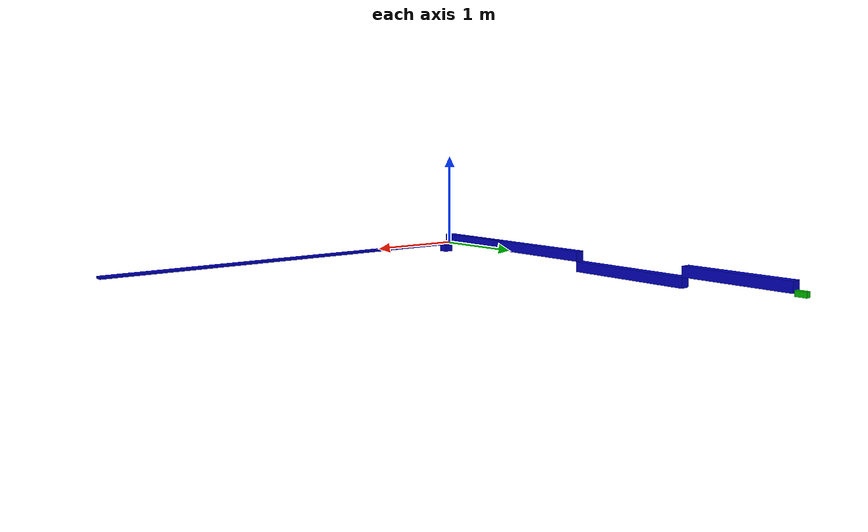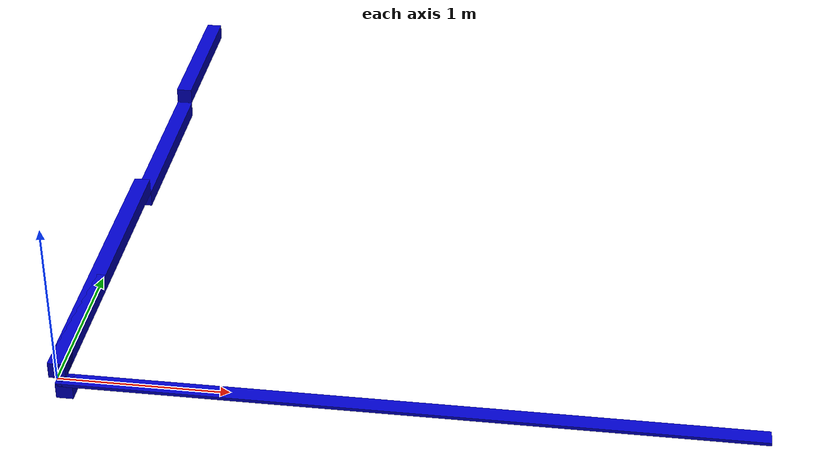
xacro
<?xml version="1.0"?>
<robot name="r6_arm" xmlns:xacro="http://wiki.ros.org/xacro">

<xacro:include filename="$(find planar_arm_support)/urdf/planar_link_macro.xacro" />
<xacro:include filename="$(find planar_arm_support)/urdf/planar_joint_macro.xacro" />

<xacro:property name="joint_limits" value="${pi / 2}" />

  <material name="blue">
      <color rgba="0 0 0.8 1.0"/>
  </material>

  <material name="green">
      <color rgba="0 0.8 0 1.0"/>
  </material>

  <link name="world" />

  <link name="base_link">
    <visual>
      <geometry>
        <box size="4.0 0.1 0.02"/>
      </geometry>
      <origin xyz="2.0 0 -0.01"/>
      <material name="blue"/>
    </visual>
  </link>

  <link name="link_1">
    <visual>
      <geometry>
        <box size="0.1 0.9 0.1"/>
      </geometry>
      <origin xyz="0 0.45 0.05"/>
      <material name="blue"/>
    </visual>
    <collision>
      <geometry>
        <box size="0.1 0.9 0.1"/>
      </geometry>
      <origin xyz="0 0.45 0.05"/>
    </collision>
  </link>
  <xacro:planar_link name="link_2" length="0.1" width="0.1" geom_z_offset="-0.05" />
  <xacro:planar_link name="link_3" length="2.0" width="0.1" geom_z_offset="0.05" />
  <xacro:planar_link name="link_4" length="1.2" width="0.1" geom_z_offset="-0.05" />
  <xacro:planar_link name="link_5" length="1.0" width="0.1" geom_z_offset="0.05" />

<link name="flange" />

<link name="tool">
    <visual>
      <geometry>
        <box size="0.1 0.05 0.05"/>
      </geometry>
      <origin xyz="0.05 0 0"/>
      <material name="green"/>
    </visual>
    <collision>
      <geometry>
        <box size="0.1 0.05 0.05"/>
      </geometry>
      <origin xyz="0.05 0 0"/>
    </collision>
  </link>

<link name="tool0" />

<joint name="world_to_base_link" type="fixed">
    <parent link="world"/>
    <child link="base_link"/>
</joint>

<joint name="base_link_link_1" type="prismatic">
    <axis xyz="1 0 0"/>
    <limit effort="1000.0" lower="0" upper="4" velocity="0.5"/>
    <parent link="base_link"/>
    <child link="link_1"/>
    <origin xyz="0 0 0"/>
</joint>

<joint name="link_1_link_2" type="prismatic">
    <axis xyz="0 1 0"/>
    <limit effort="1000.0" lower="0" upper="0.9" velocity="0.5"/>
    <parent link="link_1"/>
    <child link="link_2"/>
    <origin xyz="0 0 0"/>
</joint>

<joint name="link_2_link_3" type="revolute">
    <axis xyz="0 0 1"/>
    <limit effort="1000.0" lower="-${joint_limits}" upper="${joint_limits}" velocity="0.5"/>
    <parent link="link_2"/>
    <child link="link_3"/>
    <origin xyz="0 0 0" rpy="0 0 ${pi / 2}"/>
</joint>

<xacro:planar_joint parent_link="link_3" child_link="link_4" link_length="2.0" lower_limit="-${joint_limits}" upper_limit="${joint_limits}"/>
<xacro:planar_joint parent_link="link_4" child_link="link_5" link_length="1.2" lower_limit="-${joint_limits}" upper_limit="${joint_limits}"/>

<joint name="link_5_to_flange" type="fixed">
    <parent link="link_5"/>
    <child link="flange"/>
    <origin xyz="1.0 0 0"/>
</joint>

<joint name="flange_to_tool" type="fixed">
    <parent link="flange"/>
    <child link="tool"/>
</joint>

<joint name="tool_to_tool0" type="fixed">
    <parent link="tool"/>
    <child link="tool0"/>
    <origin xyz="0.1 0 0"/>
</joint>

</robot>

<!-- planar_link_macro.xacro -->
<robot xmlns:xacro="http://wiki.ros.org/xacro">

<xacro:macro name="planar_link" params="name length width geom_z_offset">

<link name="${name}">
    <visual>
      <geometry>
        <box size="${length} ${width} ${width}"/>
      </geometry>
      <origin xyz="${length / 2} 0 ${geom_z_offset}"/>
      <material name="blue"/>
    </visual>
    <collision>
      <geometry>
        <box size="${length} ${width} ${width}"/>
      </geometry>
      <origin xyz="${length / 2} 0 ${geom_z_offset}"/>
    </collision>
  </link>

</xacro:macro>
</robot>

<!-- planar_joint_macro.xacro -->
<robot xmlns:xacro="http://wiki.ros.org/xacro">
<xacro:macro name="planar_joint" params="parent_link child_link link_length lower_limit upper_limit">

<joint name="${parent_link}_to_${child_link}" type="revolute">
    <axis xyz="0 0 1"/>
    <limit effort="1000.0" lower="${lower_limit}" upper="${upper_limit}" velocity="0.5"/>
    <parent link="${parent_link}"/>
    <child link="${child_link}"/>
    <origin xyz="${link_length} 0 0"/>
</joint>

</xacro:macro>
</robot>
